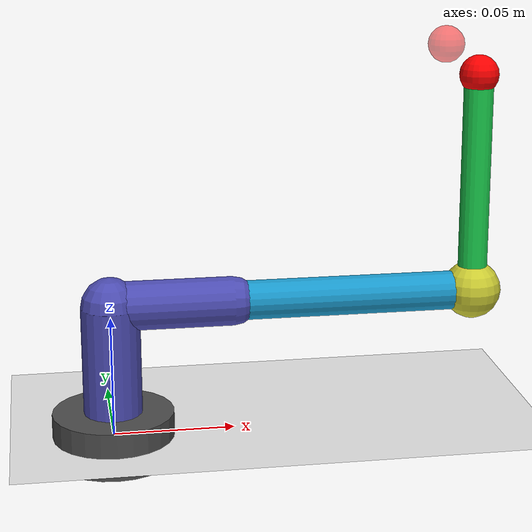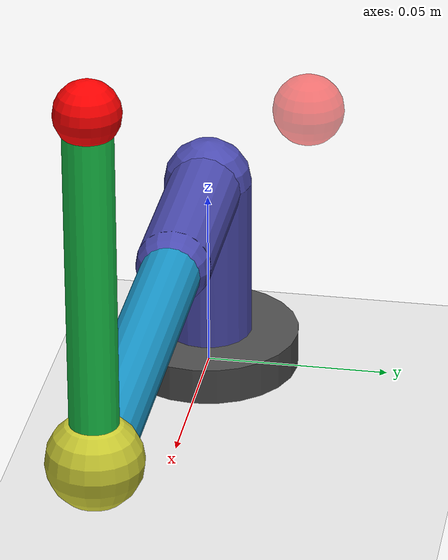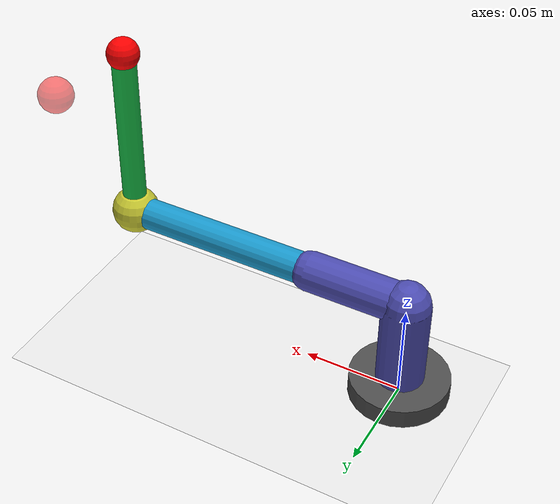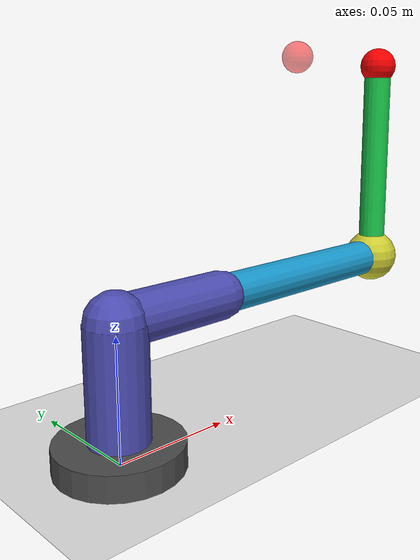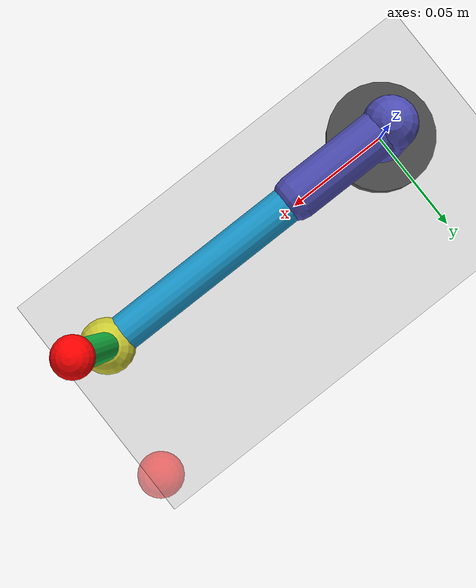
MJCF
<mujoco model="4dof_arm_zxzx">

  <compiler angle="radian"/>

  <option timestep="0.002" gravity="0 0 -9.81"/>

  <default>
    <joint damping="0.05" armature="0.01"/>
    <geom rgba="0.8 0.3 0.1 1" margin="0.001"/>
    <motor ctrlrange="-5 5" ctrllimited="true"/>
  </default>

  <worldbody>
    <light diffuse=".8 .8 .8" pos="0 0 0.5" dir="0 0 -1"/>
    <light diffuse=".4 .4 .4" pos="0.3 0.3 0.4" dir="-0.3 -0.3 -0.5"/>
    <geom type="plane" size="0.5 0.5 0.01" rgba=".9 .9 .9 1"/>

    <!-- Base (fixed to ground) -->
    <body name="base" pos="0 0 0">
      <geom type="cylinder" size="0.025 0.01" rgba="0.3 0.3 0.3 1" mass="0.5"/>

      <!-- Joint 1: Z-axis rotation (base yaw) — at origin -->
      <!-- After q1 rotation, we offset by Laz along z and Lax along x -->
      <body name="link1" pos="0 0 0">
        <joint name="q1" type="hinge" axis="0 0 1" range="-3.14159 3.14159"/>
        <!-- Base column: Laz = 55mm vertical -->
        <geom type="capsule" fromto="0 0 0 0 0 0.055" size="0.012" mass="0.3" rgba="0.3 0.3 0.7 1"/>

        <!-- Shoulder offset: Lax = 50mm along x at top of base column -->
        <body name="shoulder_offset" pos="0 0 0.055">
          <geom type="capsule" fromto="0 0 0 0.050 0 0" size="0.010" mass="0.1" rgba="0.3 0.3 0.7 1"/>

          <!-- Joint 2: X-axis rotation (shoulder pitch) — at end of offset -->
          <body name="link2" pos="0.050 0 0">
            <joint name="q2" type="hinge" axis="1 0 0" range="-1.5708 1.5708"/>
            <!-- Upper arm: Lb = 100mm along x (in B-frame) -->
            <geom type="capsule" fromto="0 0 0 0.100 0 0" size="0.008" mass="0.2" rgba="0.1 0.6 0.8 1"/>

            <!-- Joint 3: Z-axis rotation (elbow yaw) — at end of upper arm -->
            <body name="link3" pos="0.100 0 0">
              <joint name="q3" type="hinge" axis="0 0 1" range="-3.14159 3.14159"/>
              <geom type="sphere" size="0.012" mass="0.05" rgba="0.8 0.8 0.2 1"/>

              <!-- Joint 4: X-axis rotation (wrist pitch) — same position as q3 -->
              <body name="link4" pos="0 0 0">
                <joint name="q4" type="hinge" axis="1 0 0" range="-1.5708 1.5708"/>
                <!-- Forearm: Lt = 90mm along z (in D-frame) -->
                <geom type="capsule" fromto="0 0 0 0 0 0.090" size="0.006" mass="0.1" rgba="0.1 0.8 0.3 1"/>

                <!-- End effector site at tip -->
                <site name="end_effector" pos="0 0 0.090" size="0.008" rgba="1 0 0 1"/>
              </body>
            </body>
          </body>
        </body>
      </body>
    </body>

    <!-- Target marker (movable) -->
    <body name="target" pos="0.15 0.05 0.15" mocap="true">
      <geom type="sphere" size="0.008" rgba="1 0 0 0.5" contype="0" conaffinity="0"/>
    </body>
  </worldbody>

  <actuator>
    <motor name="motor_q1" joint="q1" gear="5"/>
    <motor name="motor_q2" joint="q2" gear="5"/>
    <motor name="motor_q3" joint="q3" gear="3"/>
    <motor name="motor_q4" joint="q4" gear="2"/>
  </actuator>

  <sensor>
    <jointpos name="pos_q1" joint="q1"/>
    <jointpos name="pos_q2" joint="q2"/>
    <jointpos name="pos_q3" joint="q3"/>
    <jointpos name="pos_q4" joint="q4"/>
    <jointvel name="vel_q1" joint="q1"/>
    <jointvel name="vel_q2" joint="q2"/>
    <jointvel name="vel_q3" joint="q3"/>
    <jointvel name="vel_q4" joint="q4"/>
  </sensor>
</mujoco>
